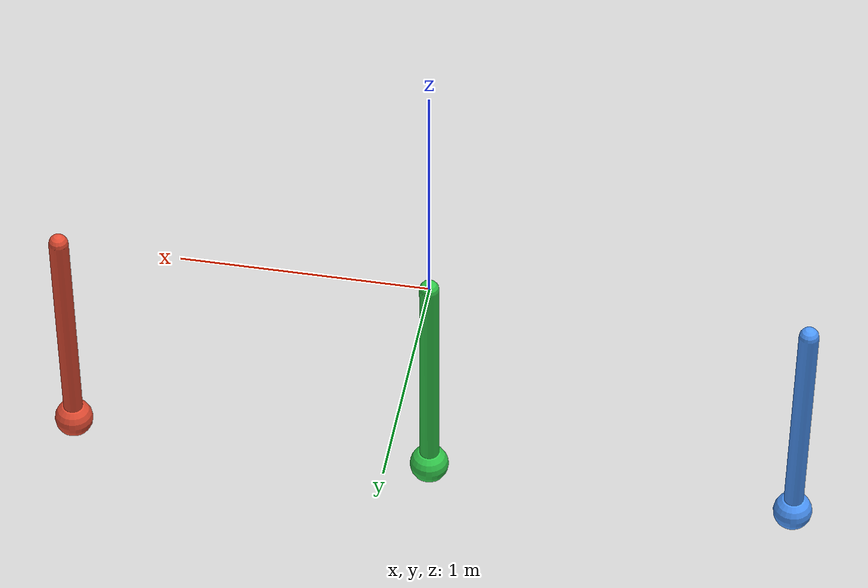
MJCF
<mujoco model="spring-damper-tuning">
  <compiler angle="radian"/>
  <option gravity="0 0 0" timestep="0.001"/>
  <worldbody>
    <body name="arm_a" pos="-1.5 0 0">
      <joint name="j_a" type="hinge" axis="0 1 0"
             stiffness="0" damping="0" springref="0"/>
      <geom name="rod_a" type="capsule" fromto="0 0 0 0 0 -1"
            size="0.04" mass="1.0" rgba="0.3 0.6 1.0 1"/>
      <geom name="tip_a" type="sphere" pos="0 0 -1"
            size="0.08" mass="0.5" rgba="0.3 0.6 1.0 1"/>
    </body>
    <body name="arm_b" pos="0 0 0">
      <joint name="j_b" type="hinge" axis="0 1 0"
             stiffness="0" damping="0" springref="0"/>
      <geom name="rod_b" type="capsule" fromto="0 0 0 0 0 -1"
            size="0.04" mass="1.0" rgba="0.2 0.8 0.3 1"/>
      <geom name="tip_b" type="sphere" pos="0 0 -1"
            size="0.08" mass="0.5" rgba="0.2 0.8 0.3 1"/>
    </body>
    <body name="arm_c" pos="1.5 0 0">
      <joint name="j_c" type="hinge" axis="0 1 0"
             stiffness="0" damping="0" springref="0"/>
      <geom name="rod_c" type="capsule" fromto="0 0 0 0 0 -1"
            size="0.04" mass="1.0" rgba="0.9 0.3 0.2 1"/>
      <geom name="tip_c" type="sphere" pos="0 0 -1"
            size="0.08" mass="0.5" rgba="0.9 0.3 0.2 1"/>
    </body>
  </worldbody>
</mujoco>
